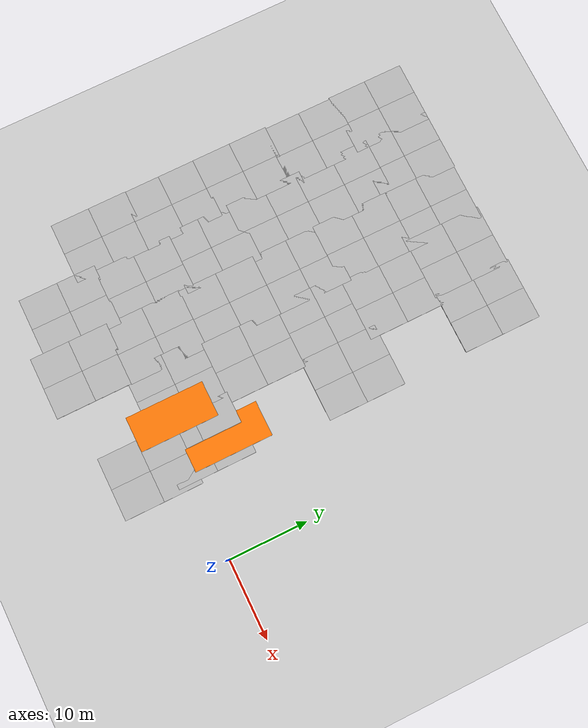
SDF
<sdf version="1.5">
 <world name="default">
  <model name="ground_plane">
   <static>1</static>
   <link name="link">
    <collision name="collision">
     <geometry><plane><normal>0 0 1</normal><size>100 100</size></plane></geometry>
     <surface><friction><ode><mu>100</mu><mu2>50</mu2></ode></friction></surface>
    </collision>
    <visual name="visual">
     <cast_shadows>0</cast_shadows>
     <geometry><plane><normal>0 0 1</normal><size>100 100</size></plane></geometry>
     <material>
      <script><uri>file://media/materials/scripts/gazebo.material</uri><name>Gazebo/Grey</name></script>
     </material>
    </visual>
   </link>
  </model>
  <model name="mud_box_10">
   <static>1</static>
   <link name="link">
    <collision name="collision"><geometry><box><size>8 10 0.2</size></box></geometry></collision>
    <visual name="visual_1">
     <pose>-2 2.5 0 0 -0 0</pose>
     <cast_shadows>0</cast_shadows>
     <geometry><box><size>4 5 0.2</size></box></geometry>
     <material>
      <script>
       <uri>model://mud_box/materials/scripts</uri>
       <uri>model://mud_box/materials/textures</uri>
       <name>vrc/mud</name>
      </script>
     </material>
    </visual>
    <visual name="visual_2">
     <pose>2 2.5 0 0 -0 0</pose>
     <cast_shadows>0</cast_shadows>
     <geometry><box><size>4 5 0.2</size></box></geometry>
     <material>
      <script>
       <uri>model://mud_box/materials/scripts</uri>
       <uri>model://mud_box/materials/textures</uri>
       <name>vrc/mud</name>
      </script>
     </material>
    </visual>
    <visual name="visual_3">
     <pose>2 -2.5 0 0 -0 0</pose>
     <cast_shadows>0</cast_shadows>
     <geometry><box><size>4 5 0.2</size></box></geometry>
     <material>
      <script>
       <uri>model://mud_box/materials/scripts</uri>
       <uri>model://mud_box/materials/textures</uri>
       <name>vrc/mud</name>
      </script>
     </material>
    </visual>
    <visual name="visual_4">
     <pose>-2 -2.5 0 0 -0 0</pose>
     <cast_shadows>0</cast_shadows>
     <geometry><box><size>4 5 0.2</size></box></geometry>
     <material>
      <script>
       <uri>model://mud_box/materials/scripts</uri>
       <uri>model://mud_box/materials/textures</uri>
       <name>vrc/mud</name>
      </script>
     </material>
    </visual>
   </link>
   <pose>-13.3232 -3.93027 0 0 -0 0</pose>
  </model>
  <model name="mud_box_11">
   <static>1</static>
   <link name="link">
    <collision name="collision"><geometry><box><size>8 10 0.2</size></box></geometry></collision>
    <visual name="visual_1">
     <pose>-2 2.5 0 0 -0 0</pose>
     <cast_shadows>0</cast_shadows>
     <geometry><box><size>4 5 0.2</size></box></geometry>
     <material>
      <script>
       <uri>model://mud_box/materials/scripts</uri>
       <uri>model://mud_box/materials/textures</uri>
       <name>vrc/mud</name>
      </script>
     </material>
    </visual>
    <visual name="visual_2">
     <pose>2 2.5 0 0 -0 0</pose>
     <cast_shadows>0</cast_shadows>
     <geometry><box><size>4 5 0.2</size></box></geometry>
     <material>
      <script>
       <uri>model://mud_box/materials/scripts</uri>
       <uri>model://mud_box/materials/textures</uri>
       <name>vrc/mud</name>
      </script>
     </material>
    </visual>
    <visual name="visual_3">
     <pose>2 -2.5 0 0 -0 0</pose>
     <cast_shadows>0</cast_shadows>
     <geometry><box><size>4 5 0.2</size></box></geometry>
     <material>
      <script>
       <uri>model://mud_box/materials/scripts</uri>
       <uri>model://mud_box/materials/textures</uri>
       <name>vrc/mud</name>
      </script>
     </material>
    </visual>
    <visual name="visual_4">
     <pose>-2 -2.5 0 0 -0 0</pose>
     <cast_shadows>0</cast_shadows>
     <geometry><box><size>4 5 0.2</size></box></geometry>
     <material>
      <script>
       <uri>model://mud_box/materials/scripts</uri>
       <uri>model://mud_box/materials/textures</uri>
       <name>vrc/mud</name>
      </script>
     </material>
    </visual>
   </link>
   <pose>-13.8399 3.21916 0 0 -0 0</pose>
  </model>
  <model name="wall">
   <pose>-15.3228 5.82852 0 -2e-05 1.55454 -2.4e-05</pose>
   <link name="Wall_0">
    <collision name="Wall_0_Collision">
     <geometry><box><size>10 0.15 4.5</size></box></geometry>
     <pose>0 0 2.25 0 -0 0</pose>
    </collision>
    <visual name="Wall_0_Visual">
     <pose>0 0 2.25 0 -0 0</pose>
     <geometry><box><size>10 0.15 4.5</size></box></geometry>
     <material>
      <script>
       <uri>model://wall/materials/scripts</uri>
       <uri>model://wall/materials/textures</uri>
       <name>Wall/NiceWall</name>
      </script>
      <ambient>0.996078 0.47451 0.0196078 1</ambient>
     </material>
    </visual>
    <pose>0 -0 0 0 0 -1.5708</pose>
   </link>
   <static>1</static>
  </model>
  <model name="mud_box_2">
   <static>1</static>
   <link name="link">
    <collision name="collision"><geometry><box><size>8 10 0.2</size></box></geometry></collision>
    <visual name="visual_1">
     <pose>-2 2.5 0 0 -0 0</pose>
     <cast_shadows>0</cast_shadows>
     <geometry><box><size>4 5 0.2</size></box></geometry>
     <material>
      <script>
       <uri>model://mud_box/materials/scripts</uri>
       <uri>model://mud_box/materials/textures</uri>
       <name>vrc/mud</name>
      </script>
     </material>
    </visual>
    <visual name="visual_2">
     <pose>2 2.5 0 0 -0 0</pose>
     <cast_shadows>0</cast_shadows>
     <geometry><box><size>4 5 0.2</size></box></geometry>
     <material>
      <script>
       <uri>model://mud_box/materials/scripts</uri>
       <uri>model://mud_box/materials/textures</uri>
       <name>vrc/mud</name>
      </script>
     </material>
    </visual>
    <visual name="visual_3">
     <pose>2 -2.5 0 0 -0 0</pose>
     <cast_shadows>0</cast_shadows>
     <geometry><box><size>4 5 0.2</size></box></geometry>
     <material>
      <script>
       <uri>model://mud_box/materials/scripts</uri>
       <uri>model://mud_box/materials/textures</uri>
       <name>vrc/mud</name>
      </script>
     </material>
    </visual>
    <visual name="visual_4">
     <pose>-2 -2.5 0 0 -0 0</pose>
     <cast_shadows>0</cast_shadows>
     <geometry><box><size>4 5 0.2</size></box></geometry>
     <material>
      <script>
       <uri>model://mud_box/materials/scripts</uri>
       <uri>model://mud_box/materials/textures</uri>
       <name>vrc/mud</name>
      </script>
     </material>
    </visual>
   </link>
   <pose>-20.4385 12.9971 0 0 -0 0</pose>
  </model>
  <model name="mud_box_16">
   <static>1</static>
   <link name="link">
    <collision name="collision"><geometry><box><size>8 10 0.2</size></box></geometry></collision>
    <visual name="visual_1">
     <pose>-2 2.5 0 0 -0 0</pose>
     <cast_shadows>0</cast_shadows>
     <geometry><box><size>4 5 0.2</size></box></geometry>
     <material>
      <script>
       <uri>model://mud_box/materials/scripts</uri>
       <uri>model://mud_box/materials/textures</uri>
       <name>vrc/mud</name>
      </script>
     </material>
    </visual>
    <visual name="visual_2">
     <pose>2 2.5 0 0 -0 0</pose>
     <cast_shadows>0</cast_shadows>
     <geometry><box><size>4 5 0.2</size></box></geometry>
     <material>
      <script>
       <uri>model://mud_box/materials/scripts</uri>
       <uri>model://mud_box/materials/textures</uri>
       <name>vrc/mud</name>
      </script>
     </material>
    </visual>
    <visual name="visual_3">
     <pose>2 -2.5 0 0 -0 0</pose>
     <cast_shadows>0</cast_shadows>
     <geometry><box><size>4 5 0.2</size></box></geometry>
     <material>
      <script>
       <uri>model://mud_box/materials/scripts</uri>
       <uri>model://mud_box/materials/textures</uri>
       <name>vrc/mud</name>
      </script>
     </material>
    </visual>
    <visual name="visual_4">
     <pose>-2 -2.5 0 0 -0 0</pose>
     <cast_shadows>0</cast_shadows>
     <geometry><box><size>4 5 0.2</size></box></geometry>
     <material>
      <script>
       <uri>model://mud_box/materials/scripts</uri>
       <uri>model://mud_box/materials/textures</uri>
       <name>vrc/mud</name>
      </script>
     </material>
    </visual>
   </link>
   <pose>-21.3729 3.04393 0 0 -0 0</pose>
  </model>
  <model name="mud_box_23">
   <static>1</static>
   <link name="link">
    <collision name="collision"><geometry><box><size>8 10 0.2</size></box></geometry></collision>
    <visual name="visual_1">
     <pose>-2 2.5 0 0 -0 0</pose>
     <cast_shadows>0</cast_shadows>
     <geometry><box><size>4 5 0.2</size></box></geometry>
     <material>
      <script>
       <uri>model://mud_box/materials/scripts</uri>
       <uri>model://mud_box/materials/textures</uri>
       <name>vrc/mud</name>
      </script>
     </material>
    </visual>
    <visual name="visual_2">
     <pose>2 2.5 0 0 -0 0</pose>
     <cast_shadows>0</cast_shadows>
     <geometry><box><size>4 5 0.2</size></box></geometry>
     <material>
      <script>
       <uri>model://mud_box/materials/scripts</uri>
       <uri>model://mud_box/materials/textures</uri>
       <name>vrc/mud</name>
      </script>
     </material>
    </visual>
    <visual name="visual_3">
     <pose>2 -2.5 0 0 -0 0</pose>
     <cast_shadows>0</cast_shadows>
     <geometry><box><size>4 5 0.2</size></box></geometry>
     <material>
      <script>
       <uri>model://mud_box/materials/scripts</uri>
       <uri>model://mud_box/materials/textures</uri>
       <name>vrc/mud</name>
      </script>
     </material>
    </visual>
    <visual name="visual_4">
     <pose>-2 -2.5 0 0 -0 0</pose>
     <cast_shadows>0</cast_shadows>
     <geometry><box><size>4 5 0.2</size></box></geometry>
     <material>
      <script>
       <uri>model://mud_box/materials/scripts</uri>
       <uri>model://mud_box/materials/textures</uri>
       <name>vrc/mud</name>
      </script>
     </material>
    </visual>
   </link>
   <pose>-20.8902 22.7863 0 0 -0 0</pose>
  </model>
  <model name="mud_box_24">
   <static>1</static>
   <link name="link">
    <collision name="collision"><geometry><box><size>8 10 0.2</size></box></geometry></collision>
    <visual name="visual_1">
     <pose>-2 2.5 0 0 -0 0</pose>
     <cast_shadows>0</cast_shadows>
     <geometry><box><size>4 5 0.2</size></box></geometry>
     <material>
      <script>
       <uri>model://mud_box/materials/scripts</uri>
       <uri>model://mud_box/materials/textures</uri>
       <name>vrc/mud</name>
      </script>
     </material>
    </visual>
    <visual name="visual_2">
     <pose>2 2.5 0 0 -0 0</pose>
     <cast_shadows>0</cast_shadows>
     <geometry><box><size>4 5 0.2</size></box></geometry>
     <material>
      <script>
       <uri>model://mud_box/materials/scripts</uri>
       <uri>model://mud_box/materials/textures</uri>
       <name>vrc/mud</name>
      </script>
     </material>
    </visual>
    <visual name="visual_3">
     <pose>2 -2.5 0 0 -0 0</pose>
     <cast_shadows>0</cast_shadows>
     <geometry><box><size>4 5 0.2</size></box></geometry>
     <material>
      <script>
       <uri>model://mud_box/materials/scripts</uri>
       <uri>model://mud_box/materials/textures</uri>
       <name>vrc/mud</name>
      </script>
     </material>
    </visual>
    <visual name="visual_4">
     <pose>-2 -2.5 0 0 -0 0</pose>
     <cast_shadows>0</cast_shadows>
     <geometry><box><size>4 5 0.2</size></box></geometry>
     <material>
      <script>
       <uri>model://mud_box/materials/scripts</uri>
       <uri>model://mud_box/materials/textures</uri>
       <name>vrc/mud</name>
      </script>
     </material>
    </visual>
   </link>
   <pose>-13.3675 22.7407 0 0 -0 0</pose>
  </model>
  <model name="mud_box_41">
   <static>1</static>
   <link name="link">
    <collision name="collision"><geometry><box><size>8 10 0.2</size></box></geometry></collision>
    <visual name="visual_1">
     <pose>-2 2.5 0 0 -0 0</pose>
     <cast_shadows>0</cast_shadows>
     <geometry><box><size>4 5 0.2</size></box></geometry>
     <material>
      <script>
       <uri>model://mud_box/materials/scripts</uri>
       <uri>model://mud_box/materials/textures</uri>
       <name>vrc/mud</name>
      </script>
     </material>
    </visual>
    <visual name="visual_2">
     <pose>2 2.5 0 0 -0 0</pose>
     <cast_shadows>0</cast_shadows>
     <geometry><box><size>4 5 0.2</size></box></geometry>
     <material>
      <script>
       <uri>model://mud_box/materials/scripts</uri>
       <uri>model://mud_box/materials/textures</uri>
       <name>vrc/mud</name>
      </script>
     </material>
    </visual>
    <visual name="visual_3">
     <pose>2 -2.5 0 0 -0 0</pose>
     <cast_shadows>0</cast_shadows>
     <geometry><box><size>4 5 0.2</size></box></geometry>
     <material>
      <script>
       <uri>model://mud_box/materials/scripts</uri>
       <uri>model://mud_box/materials/textures</uri>
       <name>vrc/mud</name>
      </script>
     </material>
    </visual>
    <visual name="visual_4">
     <pose>-2 -2.5 0 0 -0 0</pose>
     <cast_shadows>0</cast_shadows>
     <geometry><box><size>4 5 0.2</size></box></geometry>
     <material>
      <script>
       <uri>model://mud_box/materials/scripts</uri>
       <uri>model://mud_box/materials/textures</uri>
       <name>vrc/mud</name>
      </script>
     </material>
    </visual>
   </link>
   <pose>-27.5432 22.7369 0 0 -0 0</pose>
  </model>
  <model name="mud_box_42">
   <static>1</static>
   <link name="link">
    <collision name="collision"><geometry><box><size>8 10 0.2</size></box></geometry></collision>
    <visual name="visual_1">
     <pose>-2 2.5 0 0 -0 0</pose>
     <cast_shadows>0</cast_shadows>
     <geometry><box><size>4 5 0.2</size></box></geometry>
     <material>
      <script>
       <uri>model://mud_box/materials/scripts</uri>
       <uri>model://mud_box/materials/textures</uri>
       <name>vrc/mud</name>
      </script>
     </material>
    </visual>
    <visual name="visual_2">
     <pose>2 2.5 0 0 -0 0</pose>
     <cast_shadows>0</cast_shadows>
     <geometry><box><size>4 5 0.2</size></box></geometry>
     <material>
      <script>
       <uri>model://mud_box/materials/scripts</uri>
       <uri>model://mud_box/materials/textures</uri>
       <name>vrc/mud</name>
      </script>
     </material>
    </visual>
    <visual name="visual_3">
     <pose>2 -2.5 0 0 -0 0</pose>
     <cast_shadows>0</cast_shadows>
     <geometry><box><size>4 5 0.2</size></box></geometry>
     <material>
      <script>
       <uri>model://mud_box/materials/scripts</uri>
       <uri>model://mud_box/materials/textures</uri>
       <name>vrc/mud</name>
      </script>
     </material>
    </visual>
    <visual name="visual_4">
     <pose>-2 -2.5 0 0 -0 0</pose>
     <cast_shadows>0</cast_shadows>
     <geometry><box><size>4 5 0.2</size></box></geometry>
     <material>
      <script>
       <uri>model://mud_box/materials/scripts</uri>
       <uri>model://mud_box/materials/textures</uri>
       <name>vrc/mud</name>
      </script>
     </material>
    </visual>
   </link>
   <pose>-27.5453 13.2273 0 0 -0 0</pose>
  </model>
  <model name="mud_box_43">
   <static>1</static>
   <link name="link">
    <collision name="collision"><geometry><box><size>8 10 0.2</size></box></geometry></collision>
    <visual name="visual_1">
     <pose>-2 2.5 0 0 -0 0</pose>
     <cast_shadows>0</cast_shadows>
     <geometry><box><size>4 5 0.2</size></box></geometry>
     <material>
      <script>
       <uri>model://mud_box/materials/scripts</uri>
       <uri>model://mud_box/materials/textures</uri>
       <name>vrc/mud</name>
      </script>
     </material>
    </visual>
    <visual name="visual_2">
     <pose>2 2.5 0 0 -0 0</pose>
     <cast_shadows>0</cast_shadows>
     <geometry><box><size>4 5 0.2</size></box></geometry>
     <material>
      <script>
       <uri>model://mud_box/materials/scripts</uri>
       <uri>model://mud_box/materials/textures</uri>
       <name>vrc/mud</name>
      </script>
     </material>
    </visual>
    <visual name="visual_3">
     <pose>2 -2.5 0 0 -0 0</pose>
     <cast_shadows>0</cast_shadows>
     <geometry><box><size>4 5 0.2</size></box></geometry>
     <material>
      <script>
       <uri>model://mud_box/materials/scripts</uri>
       <uri>model://mud_box/materials/textures</uri>
       <name>vrc/mud</name>
      </script>
     </material>
    </visual>
    <visual name="visual_4">
     <pose>-2 -2.5 0 0 -0 0</pose>
     <cast_shadows>0</cast_shadows>
     <geometry><box><size>4 5 0.2</size></box></geometry>
     <material>
      <script>
       <uri>model://mud_box/materials/scripts</uri>
       <uri>model://mud_box/materials/textures</uri>
       <name>vrc/mud</name>
      </script>
     </material>
    </visual>
   </link>
   <pose>-27.6462 3.40553 0 0 -0 0</pose>
  </model>
  <model name="mud_box_44">
   <static>1</static>
   <link name="link">
    <collision name="collision"><geometry><box><size>8 10 0.2</size></box></geometry></collision>
    <visual name="visual_1">
     <pose>-2 2.5 0 0 -0 0</pose>
     <cast_shadows>0</cast_shadows>
     <geometry><box><size>4 5 0.2</size></box></geometry>
     <material>
      <script>
       <uri>model://mud_box/materials/scripts</uri>
       <uri>model://mud_box/materials/textures</uri>
       <name>vrc/mud</name>
      </script>
     </material>
    </visual>
    <visual name="visual_2">
     <pose>2 2.5 0 0 -0 0</pose>
     <cast_shadows>0</cast_shadows>
     <geometry><box><size>4 5 0.2</size></box></geometry>
     <material>
      <script>
       <uri>model://mud_box/materials/scripts</uri>
       <uri>model://mud_box/materials/textures</uri>
       <name>vrc/mud</name>
      </script>
     </material>
    </visual>
    <visual name="visual_3">
     <pose>2 -2.5 0 0 -0 0</pose>
     <cast_shadows>0</cast_shadows>
     <geometry><box><size>4 5 0.2</size></box></geometry>
     <material>
      <script>
       <uri>model://mud_box/materials/scripts</uri>
       <uri>model://mud_box/materials/textures</uri>
       <name>vrc/mud</name>
      </script>
     </material>
    </visual>
    <visual name="visual_4">
     <pose>-2 -2.5 0 0 -0 0</pose>
     <cast_shadows>0</cast_shadows>
     <geometry><box><size>4 5 0.2</size></box></geometry>
     <material>
      <script>
       <uri>model://mud_box/materials/scripts</uri>
       <uri>model://mud_box/materials/textures</uri>
       <name>vrc/mud</name>
      </script>
     </material>
    </visual>
   </link>
   <pose>-27.7334 -6.24771 0 0 -0 0</pose>
  </model>
  <model name="mud_box_55">
   <static>1</static>
   <link name="link">
    <collision name="collision"><geometry><box><size>8 10 0.2</size></box></geometry></collision>
    <visual name="visual_1">
     <pose>-2 2.5 0 0 -0 0</pose>
     <cast_shadows>0</cast_shadows>
     <geometry><box><size>4 5 0.2</size></box></geometry>
     <material>
      <script>
       <uri>model://mud_box/materials/scripts</uri>
       <uri>model://mud_box/materials/textures</uri>
       <name>vrc/mud</name>
      </script>
     </material>
    </visual>
    <visual name="visual_2">
     <pose>2 2.5 0 0 -0 0</pose>
     <cast_shadows>0</cast_shadows>
     <geometry><box><size>4 5 0.2</size></box></geometry>
     <material>
      <script>
       <uri>model://mud_box/materials/scripts</uri>
       <uri>model://mud_box/materials/textures</uri>
       <name>vrc/mud</name>
      </script>
     </material>
    </visual>
    <visual name="visual_3">
     <pose>2 -2.5 0 0 -0 0</pose>
     <cast_shadows>0</cast_shadows>
     <geometry><box><size>4 5 0.2</size></box></geometry>
     <material>
      <script>
       <uri>model://mud_box/materials/scripts</uri>
       <uri>model://mud_box/materials/textures</uri>
       <name>vrc/mud</name>
      </script>
     </material>
    </visual>
    <visual name="visual_4">
     <pose>-2 -2.5 0 0 -0 0</pose>
     <cast_shadows>0</cast_shadows>
     <geometry><box><size>4 5 0.2</size></box></geometry>
     <material>
      <script>
       <uri>model://mud_box/materials/scripts</uri>
       <uri>model://mud_box/materials/textures</uri>
       <name>vrc/mud</name>
      </script>
     </material>
    </visual>
   </link>
   <pose>-27.6483 31.4865 0 0 -0 0</pose>
  </model>
  <model name="mud_box_56">
   <static>1</static>
   <link name="link">
    <collision name="collision"><geometry><box><size>8 10 0.2</size></box></geometry></collision>
    <visual name="visual_1">
     <pose>-2 2.5 0 0 -0 0</pose>
     <cast_shadows>0</cast_shadows>
     <geometry><box><size>4 5 0.2</size></box></geometry>
     <material>
      <script>
       <uri>model://mud_box/materials/scripts</uri>
       <uri>model://mud_box/materials/textures</uri>
       <name>vrc/mud</name>
      </script>
     </material>
    </visual>
    <visual name="visual_2">
     <pose>2 2.5 0 0 -0 0</pose>
     <cast_shadows>0</cast_shadows>
     <geometry><box><size>4 5 0.2</size></box></geometry>
     <material>
      <script>
       <uri>model://mud_box/materials/scripts</uri>
       <uri>model://mud_box/materials/textures</uri>
       <name>vrc/mud</name>
      </script>
     </material>
    </visual>
    <visual name="visual_3">
     <pose>2 -2.5 0 0 -0 0</pose>
     <cast_shadows>0</cast_shadows>
     <geometry><box><size>4 5 0.2</size></box></geometry>
     <material>
      <script>
       <uri>model://mud_box/materials/scripts</uri>
       <uri>model://mud_box/materials/textures</uri>
       <name>vrc/mud</name>
      </script>
     </material>
    </visual>
    <visual name="visual_4">
     <pose>-2 -2.5 0 0 -0 0</pose>
     <cast_shadows>0</cast_shadows>
     <geometry><box><size>4 5 0.2</size></box></geometry>
     <material>
      <script>
       <uri>model://mud_box/materials/scripts</uri>
       <uri>model://mud_box/materials/textures</uri>
       <name>vrc/mud</name>
      </script>
     </material>
    </visual>
   </link>
   <pose>-19.9401 31.5376 0 0 -0 0</pose>
  </model>
  <model name="mud_box_97">
   <static>1</static>
   <link name="link">
    <collision name="collision"><geometry><box><size>8 10 0.2</size></box></geometry></collision>
    <visual name="visual_1">
     <pose>-2 2.5 0 0 -0 0</pose>
     <cast_shadows>0</cast_shadows>
     <geometry><box><size>4 5 0.2</size></box></geometry>
     <material>
      <script>
       <uri>model://mud_box/materials/scripts</uri>
       <uri>model://mud_box/materials/textures</uri>
       <name>vrc/mud</name>
      </script>
     </material>
    </visual>
    <visual name="visual_2">
     <pose>2 2.5 0 0 -0 0</pose>
     <cast_shadows>0</cast_shadows>
     <geometry><box><size>4 5 0.2</size></box></geometry>
     <material>
      <script>
       <uri>model://mud_box/materials/scripts</uri>
       <uri>model://mud_box/materials/textures</uri>
       <name>vrc/mud</name>
      </script>
     </material>
    </visual>
    <visual name="visual_3">
     <pose>2 -2.5 0 0 -0 0</pose>
     <cast_shadows>0</cast_shadows>
     <geometry><box><size>4 5 0.2</size></box></geometry>
     <material>
      <script>
       <uri>model://mud_box/materials/scripts</uri>
       <uri>model://mud_box/materials/textures</uri>
       <name>vrc/mud</name>
      </script>
     </material>
    </visual>
    <visual name="visual_4">
     <pose>-2 -2.5 0 0 -0 0</pose>
     <cast_shadows>0</cast_shadows>
     <geometry><box><size>4 5 0.2</size></box></geometry>
     <material>
      <script>
       <uri>model://mud_box/materials/scripts</uri>
       <uri>model://mud_box/materials/textures</uri>
       <name>vrc/mud</name>
      </script>
     </material>
    </visual>
   </link>
   <pose>-13.5199 41.0834 0 0 -0 0</pose>
  </model>
  <model name="mud_box_98">
   <static>1</static>
   <link name="link">
    <collision name="collision"><geometry><box><size>8 10 0.2</size></box></geometry></collision>
    <visual name="visual_1">
     <pose>-2 2.5 0 0 -0 0</pose>
     <cast_shadows>0</cast_shadows>
     <geometry><box><size>4 5 0.2</size></box></geometry>
     <material>
      <script>
       <uri>model://mud_box/materials/scripts</uri>
       <uri>model://mud_box/materials/textures</uri>
       <name>vrc/mud</name>
      </script>
     </material>
    </visual>
    <visual name="visual_2">
     <pose>2 2.5 0 0 -0 0</pose>
     <cast_shadows>0</cast_shadows>
     <geometry><box><size>4 5 0.2</size></box></geometry>
     <material>
      <script>
       <uri>model://mud_box/materials/scripts</uri>
       <uri>model://mud_box/materials/textures</uri>
       <name>vrc/mud</name>
      </script>
     </material>
    </visual>
    <visual name="visual_3">
     <pose>2 -2.5 0 0 -0 0</pose>
     <cast_shadows>0</cast_shadows>
     <geometry><box><size>4 5 0.2</size></box></geometry>
     <material>
      <script>
       <uri>model://mud_box/materials/scripts</uri>
       <uri>model://mud_box/materials/textures</uri>
       <name>vrc/mud</name>
      </script>
     </material>
    </visual>
    <visual name="visual_4">
     <pose>-2 -2.5 0 0 -0 0</pose>
     <cast_shadows>0</cast_shadows>
     <geometry><box><size>4 5 0.2</size></box></geometry>
     <material>
      <script>
       <uri>model://mud_box/materials/scripts</uri>
       <uri>model://mud_box/materials/textures</uri>
       <name>vrc/mud</name>
      </script>
     </material>
    </visual>
   </link>
   <pose>-21.0321 40.9034 0 0 -0 0</pose>
  </model>
  <model name="mud_box_99">
   <static>1</static>
   <link name="link">
    <collision name="collision"><geometry><box><size>8 10 0.2</size></box></geometry></collision>
    <visual name="visual_1">
     <pose>-2 2.5 0 0 -0 0</pose>
     <cast_shadows>0</cast_shadows>
     <geometry><box><size>4 5 0.2</size></box></geometry>
     <material>
      <script>
       <uri>model://mud_box/materials/scripts</uri>
       <uri>model://mud_box/materials/textures</uri>
       <name>vrc/mud</name>
      </script>
     </material>
    </visual>
    <visual name="visual_2">
     <pose>2 2.5 0 0 -0 0</pose>
     <cast_shadows>0</cast_shadows>
     <geometry><box><size>4 5 0.2</size></box></geometry>
     <material>
      <script>
       <uri>model://mud_box/materials/scripts</uri>
       <uri>model://mud_box/materials/textures</uri>
       <name>vrc/mud</name>
      </script>
     </material>
    </visual>
    <visual name="visual_3">
     <pose>2 -2.5 0 0 -0 0</pose>
     <cast_shadows>0</cast_shadows>
     <geometry><box><size>4 5 0.2</size></box></geometry>
     <material>
      <script>
       <uri>model://mud_box/materials/scripts</uri>
       <uri>model://mud_box/materials/textures</uri>
       <name>vrc/mud</name>
      </script>
     </material>
    </visual>
    <visual name="visual_4">
     <pose>-2 -2.5 0 0 -0 0</pose>
     <cast_shadows>0</cast_shadows>
     <geometry><box><size>4 5 0.2</size></box></geometry>
     <material>
      <script>
       <uri>model://mud_box/materials/scripts</uri>
       <uri>model://mud_box/materials/textures</uri>
       <name>vrc/mud</name>
      </script>
     </material>
    </visual>
   </link>
   <pose>-27.6105 40.7246 0 0 -0 0</pose>
  </model>
  <model name="mud_box_100">
   <static>1</static>
   <link name="link">
    <collision name="collision"><geometry><box><size>8 10 0.2</size></box></geometry></collision>
    <visual name="visual_1">
     <pose>-2 2.5 0 0 -0 0</pose>
     <cast_shadows>0</cast_shadows>
     <geometry><box><size>4 5 0.2</size></box></geometry>
     <material>
      <script>
       <uri>model://mud_box/materials/scripts</uri>
       <uri>model://mud_box/materials/textures</uri>
       <name>vrc/mud</name>
      </script>
     </material>
    </visual>
    <visual name="visual_2">
     <pose>2 2.5 0 0 -0 0</pose>
     <cast_shadows>0</cast_shadows>
     <geometry><box><size>4 5 0.2</size></box></geometry>
     <material>
      <script>
       <uri>model://mud_box/materials/scripts</uri>
       <uri>model://mud_box/materials/textures</uri>
       <name>vrc/mud</name>
      </script>
     </material>
    </visual>
    <visual name="visual_3">
     <pose>2 -2.5 0 0 -0 0</pose>
     <cast_shadows>0</cast_shadows>
     <geometry><box><size>4 5 0.2</size></box></geometry>
     <material>
      <script>
       <uri>model://mud_box/materials/scripts</uri>
       <uri>model://mud_box/materials/textures</uri>
       <name>vrc/mud</name>
      </script>
     </material>
    </visual>
    <visual name="visual_4">
     <pose>-2 -2.5 0 0 -0 0</pose>
     <cast_shadows>0</cast_shadows>
     <geometry><box><size>4 5 0.2</size></box></geometry>
     <material>
      <script>
       <uri>model://mud_box/materials/scripts</uri>
       <uri>model://mud_box/materials/textures</uri>
       <name>vrc/mud</name>
      </script>
     </material>
    </visual>
   </link>
   <pose>-34.853 40.8418 0 0 -0 0</pose>
  </model>
  <model name="mud_box_101">
   <static>1</static>
   <link name="link">
    <collision name="collision"><geometry><box><size>8 10 0.2</size></box></geometry></collision>
    <visual name="visual_1">
     <pose>-2 2.5 0 0 -0 0</pose>
     <cast_shadows>0</cast_shadows>
     <geometry><box><size>4 5 0.2</size></box></geometry>
     <material>
      <script>
       <uri>model://mud_box/materials/scripts</uri>
       <uri>model://mud_box/materials/textures</uri>
       <name>vrc/mud</name>
      </script>
     </material>
    </visual>
    <visual name="visual_2">
     <pose>2 2.5 0 0 -0 0</pose>
     <cast_shadows>0</cast_shadows>
     <geometry><box><size>4 5 0.2</size></box></geometry>
     <material>
      <script>
       <uri>model://mud_box/materials/scripts</uri>
       <uri>model://mud_box/materials/textures</uri>
       <name>vrc/mud</name>
      </script>
     </material>
    </visual>
    <visual name="visual_3">
     <pose>2 -2.5 0 0 -0 0</pose>
     <cast_shadows>0</cast_shadows>
     <geometry><box><size>4 5 0.2</size></box></geometry>
     <material>
      <script>
       <uri>model://mud_box/materials/scripts</uri>
       <uri>model://mud_box/materials/textures</uri>
       <name>vrc/mud</name>
      </script>
     </material>
    </visual>
    <visual name="visual_4">
     <pose>-2 -2.5 0 0 -0 0</pose>
     <cast_shadows>0</cast_shadows>
     <geometry><box><size>4 5 0.2</size></box></geometry>
     <material>
      <script>
       <uri>model://mud_box/materials/scripts</uri>
       <uri>model://mud_box/materials/textures</uri>
       <name>vrc/mud</name>
      </script>
     </material>
    </visual>
   </link>
   <pose>-34.7914 32.4584 0 0 -0 0</pose>
  </model>
  <model name="mud_box_102">
   <static>1</static>
   <link name="link">
    <collision name="collision"><geometry><box><size>8 10 0.2</size></box></geometry></collision>
    <visual name="visual_1">
     <pose>-2 2.5 0 0 -0 0</pose>
     <cast_shadows>0</cast_shadows>
     <geometry><box><size>4 5 0.2</size></box></geometry>
     <material>
      <script>
       <uri>model://mud_box/materials/scripts</uri>
       <uri>model://mud_box/materials/textures</uri>
       <name>vrc/mud</name>
      </script>
     </material>
    </visual>
    <visual name="visual_2">
     <pose>2 2.5 0 0 -0 0</pose>
     <cast_shadows>0</cast_shadows>
     <geometry><box><size>4 5 0.2</size></box></geometry>
     <material>
      <script>
       <uri>model://mud_box/materials/scripts</uri>
       <uri>model://mud_box/materials/textures</uri>
       <name>vrc/mud</name>
      </script>
     </material>
    </visual>
    <visual name="visual_3">
     <pose>2 -2.5 0 0 -0 0</pose>
     <cast_shadows>0</cast_shadows>
     <geometry><box><size>4 5 0.2</size></box></geometry>
     <material>
      <script>
       <uri>model://mud_box/materials/scripts</uri>
       <uri>model://mud_box/materials/textures</uri>
       <name>vrc/mud</name>
      </script>
     </material>
    </visual>
    <visual name="visual_4">
     <pose>-2 -2.5 0 0 -0 0</pose>
     <cast_shadows>0</cast_shadows>
     <geometry><box><size>4 5 0.2</size></box></geometry>
     <material>
      <script>
       <uri>model://mud_box/materials/scripts</uri>
       <uri>model://mud_box/materials/textures</uri>
       <name>vrc/mud</name>
      </script>
     </material>
    </visual>
   </link>
   <pose>-34.7986 23.1583 0 0 -0 0</pose>
  </model>
  <model name="mud_box_103">
   <static>1</static>
   <link name="link">
    <collision name="collision"><geometry><box><size>8 10 0.2</size></box></geometry></collision>
    <visual name="visual_1">
     <pose>-2 2.5 0 0 -0 0</pose>
     <cast_shadows>0</cast_shadows>
     <geometry><box><size>4 5 0.2</size></box></geometry>
     <material>
      <script>
       <uri>model://mud_box/materials/scripts</uri>
       <uri>model://mud_box/materials/textures</uri>
       <name>vrc/mud</name>
      </script>
     </material>
    </visual>
    <visual name="visual_2">
     <pose>2 2.5 0 0 -0 0</pose>
     <cast_shadows>0</cast_shadows>
     <geometry><box><size>4 5 0.2</size></box></geometry>
     <material>
      <script>
       <uri>model://mud_box/materials/scripts</uri>
       <uri>model://mud_box/materials/textures</uri>
       <name>vrc/mud</name>
      </script>
     </material>
    </visual>
    <visual name="visual_3">
     <pose>2 -2.5 0 0 -0 0</pose>
     <cast_shadows>0</cast_shadows>
     <geometry><box><size>4 5 0.2</size></box></geometry>
     <material>
      <script>
       <uri>model://mud_box/materials/scripts</uri>
       <uri>model://mud_box/materials/textures</uri>
       <name>vrc/mud</name>
      </script>
     </material>
    </visual>
    <visual name="visual_4">
     <pose>-2 -2.5 0 0 -0 0</pose>
     <cast_shadows>0</cast_shadows>
     <geometry><box><size>4 5 0.2</size></box></geometry>
     <material>
      <script>
       <uri>model://mud_box/materials/scripts</uri>
       <uri>model://mud_box/materials/textures</uri>
       <name>vrc/mud</name>
      </script>
     </material>
    </visual>
   </link>
   <pose>-34.7483 14.2073 0 0 -0 0</pose>
  </model>
  <model name="mud_box_104">
   <static>1</static>
   <link name="link">
    <collision name="collision"><geometry><box><size>8 10 0.2</size></box></geometry></collision>
    <visual name="visual_1">
     <pose>-2 2.5 0 0 -0 0</pose>
     <cast_shadows>0</cast_shadows>
     <geometry><box><size>4 5 0.2</size></box></geometry>
     <material>
      <script>
       <uri>model://mud_box/materials/scripts</uri>
       <uri>model://mud_box/materials/textures</uri>
       <name>vrc/mud</name>
      </script>
     </material>
    </visual>
    <visual name="visual_2">
     <pose>2 2.5 0 0 -0 0</pose>
     <cast_shadows>0</cast_shadows>
     <geometry><box><size>4 5 0.2</size></box></geometry>
     <material>
      <script>
       <uri>model://mud_box/materials/scripts</uri>
       <uri>model://mud_box/materials/textures</uri>
       <name>vrc/mud</name>
      </script>
     </material>
    </visual>
    <visual name="visual_3">
     <pose>2 -2.5 0 0 -0 0</pose>
     <cast_shadows>0</cast_shadows>
     <geometry><box><size>4 5 0.2</size></box></geometry>
     <material>
      <script>
       <uri>model://mud_box/materials/scripts</uri>
       <uri>model://mud_box/materials/textures</uri>
       <name>vrc/mud</name>
      </script>
     </material>
    </visual>
    <visual name="visual_4">
     <pose>-2 -2.5 0 0 -0 0</pose>
     <cast_shadows>0</cast_shadows>
     <geometry><box><size>4 5 0.2</size></box></geometry>
     <material>
      <script>
       <uri>model://mud_box/materials/scripts</uri>
       <uri>model://mud_box/materials/textures</uri>
       <name>vrc/mud</name>
      </script>
     </material>
    </visual>
   </link>
   <pose>-34.346 5.21797 0 0 -0 0</pose>
  </model>
  <model name="mud_box_105">
   <static>1</static>
   <link name="link">
    <collision name="collision"><geometry><box><size>8 10 0.2</size></box></geometry></collision>
    <visual name="visual_1">
     <pose>-2 2.5 0 0 -0 0</pose>
     <cast_shadows>0</cast_shadows>
     <geometry><box><size>4 5 0.2</size></box></geometry>
     <material>
      <script>
       <uri>model://mud_box/materials/scripts</uri>
       <uri>model://mud_box/materials/textures</uri>
       <name>vrc/mud</name>
      </script>
     </material>
    </visual>
    <visual name="visual_2">
     <pose>2 2.5 0 0 -0 0</pose>
     <cast_shadows>0</cast_shadows>
     <geometry><box><size>4 5 0.2</size></box></geometry>
     <material>
      <script>
       <uri>model://mud_box/materials/scripts</uri>
       <uri>model://mud_box/materials/textures</uri>
       <name>vrc/mud</name>
      </script>
     </material>
    </visual>
    <visual name="visual_3">
     <pose>2 -2.5 0 0 -0 0</pose>
     <cast_shadows>0</cast_shadows>
     <geometry><box><size>4 5 0.2</size></box></geometry>
     <material>
      <script>
       <uri>model://mud_box/materials/scripts</uri>
       <uri>model://mud_box/materials/textures</uri>
       <name>vrc/mud</name>
      </script>
     </material>
    </visual>
    <visual name="visual_4">
     <pose>-2 -2.5 0 0 -0 0</pose>
     <cast_shadows>0</cast_shadows>
     <geometry><box><size>4 5 0.2</size></box></geometry>
     <material>
      <script>
       <uri>model://mud_box/materials/scripts</uri>
       <uri>model://mud_box/materials/textures</uri>
       <name>vrc/mud</name>
      </script>
     </material>
    </visual>
   </link>
   <pose>-34.9659 -4.58653 0 0 -0 0</pose>
  </model>
  <model name="mud_box_110">
   <static>1</static>
   <link name="link">
    <collision name="collision"><geometry><box><size>8 10 0.2</size></box></geometry></collision>
    <visual name="visual_1">
     <pose>-2 2.5 0 0 -0 0</pose>
     <cast_shadows>0</cast_shadows>
     <geometry><box><size>4 5 0.2</size></box></geometry>
     <material>
      <script>
       <uri>model://mud_box/materials/scripts</uri>
       <uri>model://mud_box/materials/textures</uri>
       <name>vrc/mud</name>
      </script>
     </material>
    </visual>
    <visual name="visual_2">
     <pose>2 2.5 0 0 -0 0</pose>
     <cast_shadows>0</cast_shadows>
     <geometry><box><size>4 5 0.2</size></box></geometry>
     <material>
      <script>
       <uri>model://mud_box/materials/scripts</uri>
       <uri>model://mud_box/materials/textures</uri>
       <name>vrc/mud</name>
      </script>
     </material>
    </visual>
    <visual name="visual_3">
     <pose>2 -2.5 0 0 -0 0</pose>
     <cast_shadows>0</cast_shadows>
     <geometry><box><size>4 5 0.2</size></box></geometry>
     <material>
      <script>
       <uri>model://mud_box/materials/scripts</uri>
       <uri>model://mud_box/materials/textures</uri>
       <name>vrc/mud</name>
      </script>
     </material>
    </visual>
    <visual name="visual_4">
     <pose>-2 -2.5 0 0 -0 0</pose>
     <cast_shadows>0</cast_shadows>
     <geometry><box><size>4 5 0.2</size></box></geometry>
     <material>
      <script>
       <uri>model://mud_box/materials/scripts</uri>
       <uri>model://mud_box/materials/textures</uri>
       <name>vrc/mud</name>
      </script>
     </material>
    </visual>
   </link>
   <pose>-41.8331 40.8418 0 0 -0 0</pose>
  </model>
  <model name="mud_box_111">
   <static>1</static>
   <link name="link">
    <collision name="collision"><geometry><box><size>8 10 0.2</size></box></geometry></collision>
    <visual name="visual_1">
     <pose>-2 2.5 0 0 -0 0</pose>
     <cast_shadows>0</cast_shadows>
     <geometry><box><size>4 5 0.2</size></box></geometry>
     <material>
      <script>
       <uri>model://mud_box/materials/scripts</uri>
       <uri>model://mud_box/materials/textures</uri>
       <name>vrc/mud</name>
      </script>
     </material>
    </visual>
    <visual name="visual_2">
     <pose>2 2.5 0 0 -0 0</pose>
     <cast_shadows>0</cast_shadows>
     <geometry><box><size>4 5 0.2</size></box></geometry>
     <material>
      <script>
       <uri>model://mud_box/materials/scripts</uri>
       <uri>model://mud_box/materials/textures</uri>
       <name>vrc/mud</name>
      </script>
     </material>
    </visual>
    <visual name="visual_3">
     <pose>2 -2.5 0 0 -0 0</pose>
     <cast_shadows>0</cast_shadows>
     <geometry><box><size>4 5 0.2</size></box></geometry>
     <material>
      <script>
       <uri>model://mud_box/materials/scripts</uri>
       <uri>model://mud_box/materials/textures</uri>
       <name>vrc/mud</name>
      </script>
     </material>
    </visual>
    <visual name="visual_4">
     <pose>-2 -2.5 0 0 -0 0</pose>
     <cast_shadows>0</cast_shadows>
     <geometry><box><size>4 5 0.2</size></box></geometry>
     <material>
      <script>
       <uri>model://mud_box/materials/scripts</uri>
       <uri>model://mud_box/materials/textures</uri>
       <name>vrc/mud</name>
      </script>
     </material>
    </visual>
   </link>
   <pose>-41.6727 31.4927 0 0 -0 0</pose>
  </model>
  <model name="mud_box_112">
   <static>1</static>
   <link name="link">
    <collision name="collision"><geometry><box><size>8 10 0.2</size></box></geometry></collision>
    <visual name="visual_1">
     <pose>-2 2.5 0 0 -0 0</pose>
     <cast_shadows>0</cast_shadows>
     <geometry><box><size>4 5 0.2</size></box></geometry>
     <material>
      <script>
       <uri>model://mud_box/materials/scripts</uri>
       <uri>model://mud_box/materials/textures</uri>
       <name>vrc/mud</name>
      </script>
     </material>
    </visual>
    <visual name="visual_2">
     <pose>2 2.5 0 0 -0 0</pose>
     <cast_shadows>0</cast_shadows>
     <geometry><box><size>4 5 0.2</size></box></geometry>
     <material>
      <script>
       <uri>model://mud_box/materials/scripts</uri>
       <uri>model://mud_box/materials/textures</uri>
       <name>vrc/mud</name>
      </script>
     </material>
    </visual>
    <visual name="visual_3">
     <pose>2 -2.5 0 0 -0 0</pose>
     <cast_shadows>0</cast_shadows>
     <geometry><box><size>4 5 0.2</size></box></geometry>
     <material>
      <script>
       <uri>model://mud_box/materials/scripts</uri>
       <uri>model://mud_box/materials/textures</uri>
       <name>vrc/mud</name>
      </script>
     </material>
    </visual>
    <visual name="visual_4">
     <pose>-2 -2.5 0 0 -0 0</pose>
     <cast_shadows>0</cast_shadows>
     <geometry><box><size>4 5 0.2</size></box></geometry>
     <material>
      <script>
       <uri>model://mud_box/materials/scripts</uri>
       <uri>model://mud_box/materials/textures</uri>
       <name>vrc/mud</name>
      </script>
     </material>
    </visual>
   </link>
   <pose>-41.8605 21.9344 0 0 -0 0</pose>
  </model>
  <model name="mud_box_113">
   <static>1</static>
   <link name="link">
    <collision name="collision"><geometry><box><size>8 10 0.2</size></box></geometry></collision>
    <visual name="visual_1">
     <pose>-2 2.5 0 0 -0 0</pose>
     <cast_shadows>0</cast_shadows>
     <geometry><box><size>4 5 0.2</size></box></geometry>
     <material>
      <script>
       <uri>model://mud_box/materials/scripts</uri>
       <uri>model://mud_box/materials/textures</uri>
       <name>vrc/mud</name>
      </script>
     </material>
    </visual>
    <visual name="visual_2">
     <pose>2 2.5 0 0 -0 0</pose>
     <cast_shadows>0</cast_shadows>
     <geometry><box><size>4 5 0.2</size></box></geometry>
     <material>
      <script>
       <uri>model://mud_box/materials/scripts</uri>
       <uri>model://mud_box/materials/textures</uri>
       <name>vrc/mud</name>
      </script>
     </material>
    </visual>
    <visual name="visual_3">
     <pose>2 -2.5 0 0 -0 0</pose>
     <cast_shadows>0</cast_shadows>
     <geometry><box><size>4 5 0.2</size></box></geometry>
     <material>
      <script>
       <uri>model://mud_box/materials/scripts</uri>
       <uri>model://mud_box/materials/textures</uri>
       <name>vrc/mud</name>
      </script>
     </material>
    </visual>
    <visual name="visual_4">
     <pose>-2 -2.5 0 0 -0 0</pose>
     <cast_shadows>0</cast_shadows>
     <geometry><box><size>4 5 0.2</size></box></geometry>
     <material>
      <script>
       <uri>model://mud_box/materials/scripts</uri>
       <uri>model://mud_box/materials/textures</uri>
       <name>vrc/mud</name>
      </script>
     </material>
    </visual>
   </link>
   <pose>-41.8488 12.2001 0 0 -0 0</pose>
  </model>
  <model name="mud_box_114">
   <static>1</static>
   <link name="link">
    <collision name="collision"><geometry><box><size>8 10 0.2</size></box></geometry></collision>
    <visual name="visual_1">
     <pose>-2 2.5 0 0 -0 0</pose>
     <cast_shadows>0</cast_shadows>
     <geometry><box><size>4 5 0.2</size></box></geometry>
     <material>
      <script>
       <uri>model://mud_box/materials/scripts</uri>
       <uri>model://mud_box/materials/textures</uri>
       <name>vrc/mud</name>
      </script>
     </material>
    </visual>
    <visual name="visual_2">
     <pose>2 2.5 0 0 -0 0</pose>
     <cast_shadows>0</cast_shadows>
     <geometry><box><size>4 5 0.2</size></box></geometry>
     <material>
      <script>
       <uri>model://mud_box/materials/scripts</uri>
       <uri>model://mud_box/materials/textures</uri>
       <name>vrc/mud</name>
      </script>
     </material>
    </visual>
    <visual name="visual_3">
     <pose>2 -2.5 0 0 -0 0</pose>
     <cast_shadows>0</cast_shadows>
     <geometry><box><size>4 5 0.2</size></box></geometry>
     <material>
      <script>
       <uri>model://mud_box/materials/scripts</uri>
       <uri>model://mud_box/materials/textures</uri>
       <name>vrc/mud</name>
      </script>
     </material>
    </visual>
    <visual name="visual_4">
     <pose>-2 -2.5 0 0 -0 0</pose>
     <cast_shadows>0</cast_shadows>
     <geometry><box><size>4 5 0.2</size></box></geometry>
     <material>
      <script>
       <uri>model://mud_box/materials/scripts</uri>
       <uri>model://mud_box/materials/textures</uri>
       <name>vrc/mud</name>
      </script>
     </material>
    </visual>
   </link>
   <pose>-41.8967 2.72354 0 0 -0 0</pose>
  </model>
  <model name="wall_4">
   <pose>-15.7623 1.10351 0.08388 1.7e-05 -1.55164 -2.1e-05</pose>
   <link name="Wall_0">
    <collision name="Wall_0_Collision">
     <geometry><box><size>10 0.15 4.5</size></box></geometry>
     <pose>0 0 2.25 0 -0 0</pose>
    </collision>
    <visual name="Wall_0_Visual">
     <pose>0 0 2.25 0 -0 0</pose>
     <geometry><box><size>10 0.15 4.5</size></box></geometry>
     <material>
      <script>
       <uri>model://wall/materials/scripts</uri>
       <uri>model://wall/materials/textures</uri>
       <name>Wall/NiceWall</name>
      </script>
      <ambient>0.996078 0.47451 0.0196078 1</ambient>
     </material>
    </visual>
    <pose>0 -0 0 0 0 -1.5708</pose>
   </link>
   <static>1</static>
  </model>
 </world>
</sdf>
